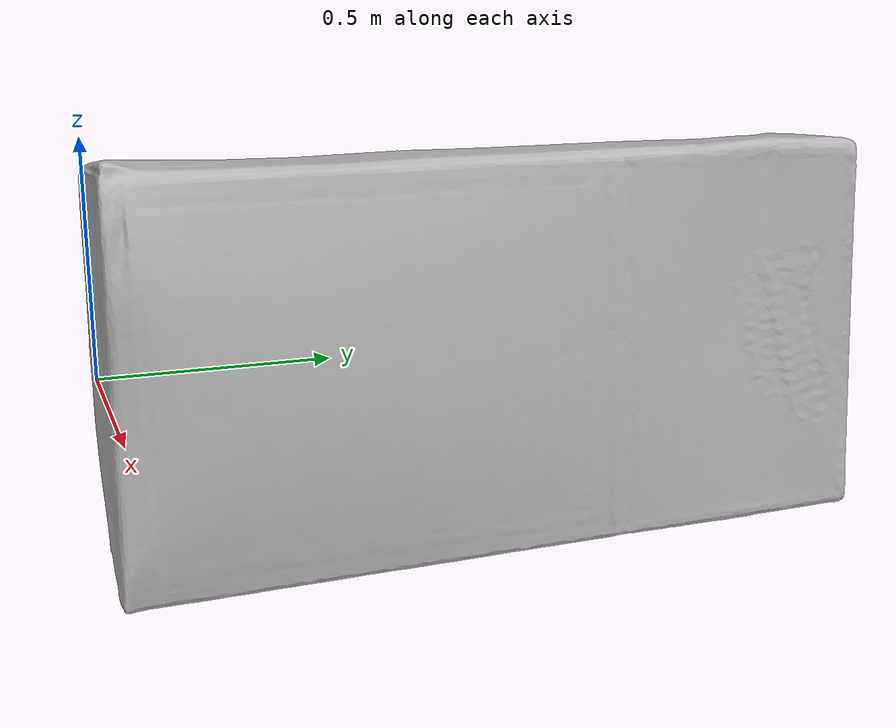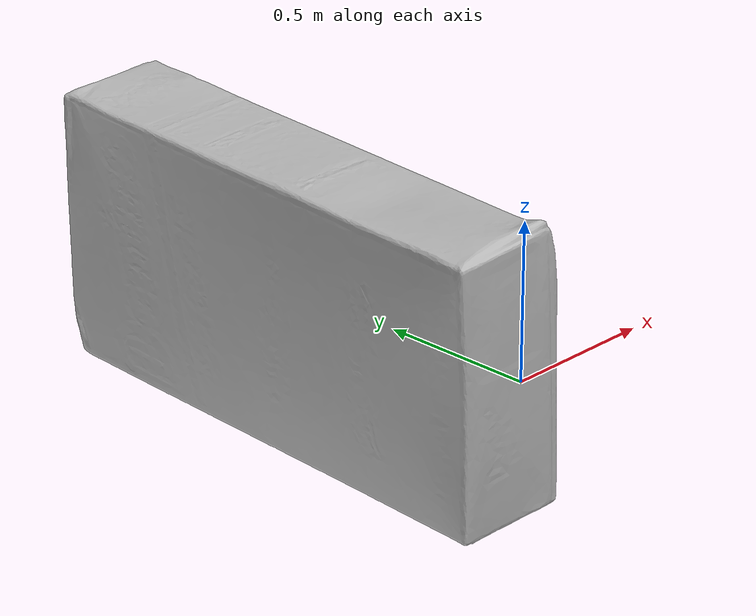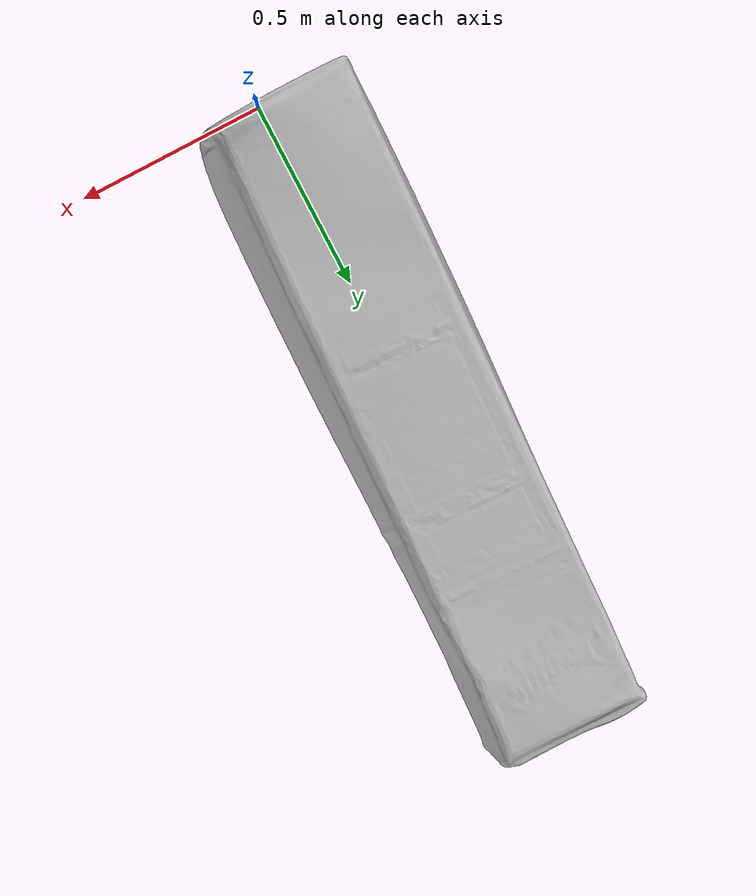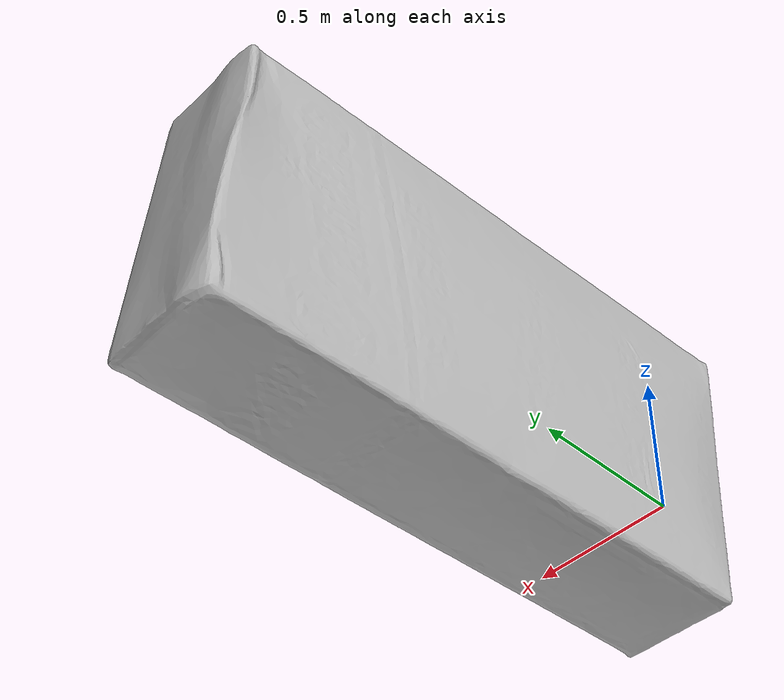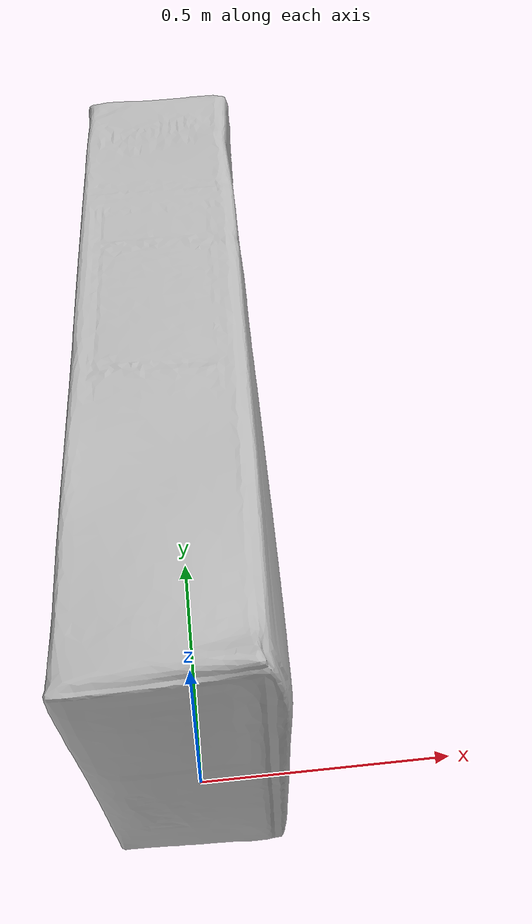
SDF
<?xml version='1.0'?>
<sdf version="1.4">
  <model name="sugar_box">
    <pose>0 0 0  0 0 0</pose>
    <static>true</static>
    <link name="body">
      <inertial>
          <mass>0.514</mass>
          <inertia>
            <ixx>0.001651</ixx>
            <ixy>0.000000</ixy>
            <ixz>0.000000</ixz>
            <iyy>0.001374</iyy>
            <iyz>0.000000</iyz>
            <izz>0.000401</izz>
          </inertia>
        </inertial>
      <collision name="collision">
        <geometry>
          <mesh>
		<uri>file://meshes/sugar.obj</uri>
          </mesh>
        </geometry>
      </collision>
      <visual name="visual">
        <geometry>
          <mesh>
		<uri>file://meshes/sugar.obj</uri>
          </mesh>
        </geometry>
      </visual>
    </link>
  </model>
</sdf>
